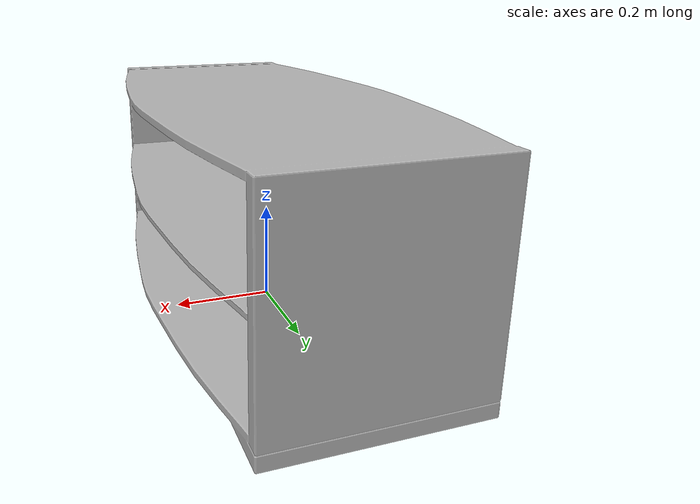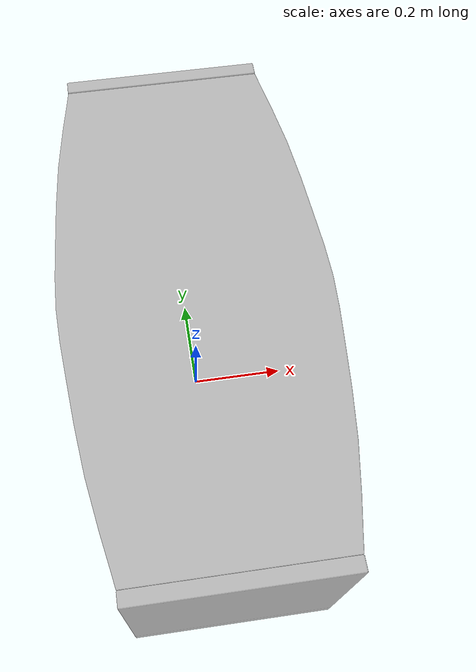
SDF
<?xml version='1.0'?>
<sdf version='1.4'>
  <model name='198'>
    <pose>0 0 0 0 0 0</pose>
    <static>true</static>
    <link name='link'>
      <collision name='collision'>
        <pose>0 0 0 0 0 0</pose>
        <geometry>
          <box>
            <size>0.533104 1.11 2</size>
          </box>
        </geometry>
      </collision>
      <visual name='visual'>
        <pose>0 0 0 0 0 0</pose>
        <geometry>
          <mesh><uri>model://198/198.dae</uri></mesh>
        </geometry>
      </visual>
    </link>
  </model>
</sdf>
